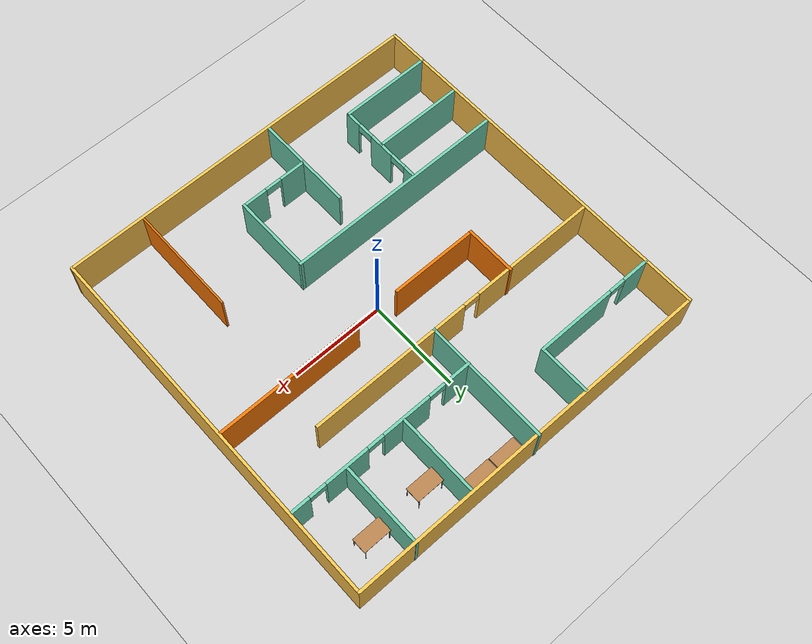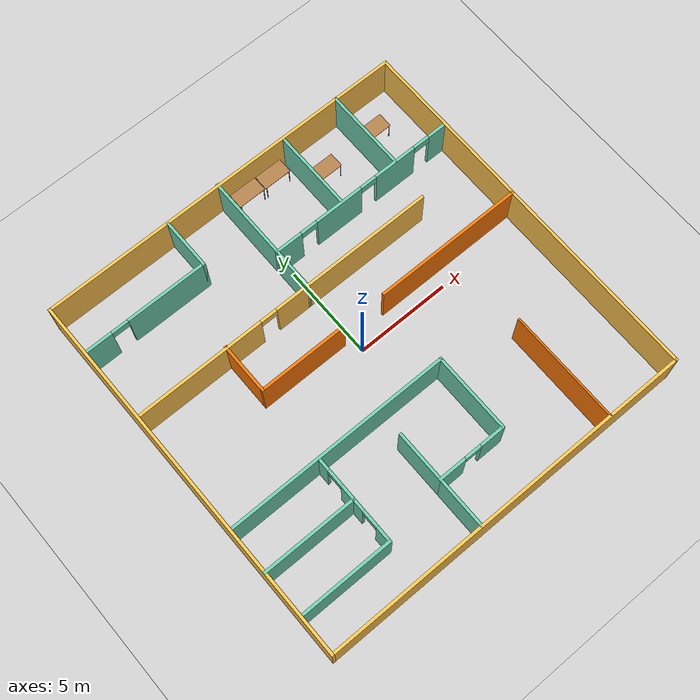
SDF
<sdf version="1.6">
 <world name="default">
  <model name="ground_plane">
   <static>1</static>
   <link name="link">
    <collision name="collision">
     <geometry><plane><normal>0 0 1</normal><size>100 100</size></plane></geometry>
     <surface>
      <contact><collide_bitmask>65535</collide_bitmask></contact>
      <friction><ode><mu>100</mu><mu2>50</mu2></ode></friction>
     </surface>
    </collision>
    <visual name="visual">
     <cast_shadows>0</cast_shadows>
     <geometry><plane><normal>0 0 1</normal><size>100 100</size></plane></geometry>
     <material>
      <script><uri>file://media/materials/scripts/gazebo.material</uri><name>Gazebo/Grey</name></script>
     </material>
    </visual>
   </link>
  </model>
  <model name="small_office">
   <pose>-0.11389 -0.002642 0 0 -0 0</pose>
   <link name="Wall_11">
    <collision name="Wall_11_Collision">
     <geometry><box><size>20 0.15 2.5</size></box></geometry>
     <pose>0 0 1.25 0 -0 0</pose>
    </collision>
    <visual name="Wall_11_Visual">
     <pose>0 0 1.25 0 -0 0</pose>
     <geometry><box><size>20 0.15 2.5</size></box></geometry>
     <material>
      <script><uri>file://media/materials/scripts/gazebo.material</uri><name>Gazebo/Grey</name></script>
      <ambient>1 0.764706 0.305882 1</ambient>
     </material>
     <meta><layer>0</layer></meta>
    </visual>
    <pose>9.925 -0.020313 0 0 -0 -1.5708</pose>
   </link>
   <link name="Wall_13">
    <collision name="Wall_13_Collision">
     <geometry><box><size>6 0.1 2.5</size></box></geometry>
     <pose>0 0 1.25 0 -0 0</pose>
    </collision>
    <visual name="Wall_13_Visual">
     <pose>0 0 1.25 0 -0 0</pose>
     <geometry><box><size>6 0.1 2.5</size></box></geometry>
     <material>
      <script><uri>file://media/materials/scripts/gazebo.material</uri><name>Gazebo/Grey</name></script>
      <ambient>0.996078 0.47451 0.0196078 1</ambient>
     </material>
     <meta><layer>0</layer></meta>
    </visual>
    <pose>5.89991 -6.99585 0 0 -0 -1.5708</pose>
   </link>
   <link name="Wall_15">
    <collision name="Wall_15_Collision">
     <geometry><box><size>4.25 0.15 2.5</size></box></geometry>
     <pose>0 0 1.25 0 -0 0</pose>
    </collision>
    <visual name="Wall_15_Visual">
     <pose>0 0 1.25 0 -0 0</pose>
     <geometry><box><size>4.25 0.15 2.5</size></box></geometry>
     <material>
      <script><uri>file://media/materials/scripts/gazebo.material</uri><name>Gazebo/Grey</name></script>
      <ambient>0.435294 0.796078 0.67451 1</ambient>
     </material>
     <meta><layer>0</layer></meta>
    </visual>
    <pose>1.96698 -5.229 0 0 -0 1.5708</pose>
   </link>
   <link name="Wall_17">
    <pose>0.146869 -7.279 0 0 -0 3.14159</pose>
    <visual name="Wall_17_Visual_0">
     <pose>-1.19969 0 1.25 0 -0 0</pose>
     <geometry><box><size>1.35062 0.15 2.5</size></box></geometry>
     <material>
      <script><uri>file://media/materials/scripts/gazebo.material</uri><name>Gazebo/Grey</name></script>
      <ambient>0.435294 0.796078 0.67451 1</ambient>
     </material>
     <meta><layer>0</layer></meta>
    </visual>
    <collision name="Wall_17_Collision_0">
     <geometry><box><size>1.35062 0.15 2.5</size></box></geometry>
     <pose>-1.19969 0 1.25 0 -0 0</pose>
    </collision>
    <visual name="Wall_17_Visual_1">
     <pose>1.12531 0 1.25 0 -0 0</pose>
     <geometry><box><size>1.49937 0.15 2.5</size></box></geometry>
     <material>
      <script><uri>file://media/materials/scripts/gazebo.material</uri><name>Gazebo/Grey</name></script>
      <ambient>0.435294 0.796078 0.67451 1</ambient>
     </material>
     <meta><layer>0</layer></meta>
    </visual>
    <collision name="Wall_17_Collision_1">
     <geometry><box><size>1.49937 0.15 2.5</size></box></geometry>
     <pose>1.12531 0 1.25 0 -0 0</pose>
    </collision>
    <visual name="Wall_17_Visual_2">
     <pose>-0.074375 0 2.25 0 -0 0</pose>
     <geometry><box><size>0.9 0.15 0.5</size></box></geometry>
     <material>
      <script><uri>file://media/materials/scripts/gazebo.material</uri><name>Gazebo/Grey</name></script>
      <ambient>0.435294 0.796078 0.67451 1</ambient>
     </material>
     <meta><layer>0</layer></meta>
    </visual>
    <collision name="Wall_17_Collision_2">
     <geometry><box><size>0.9 0.15 0.5</size></box></geometry>
     <pose>-0.074375 0 2.25 0 -0 0</pose>
    </collision>
   </link>
   <link name="Wall_25">
    <collision name="Wall_25_Collision">
     <geometry><box><size>2.75 0.15 2.5</size></box></geometry>
     <pose>0 0 1.25 0 -0 0</pose>
    </collision>
    <visual name="Wall_25_Visual">
     <pose>0 0 1.25 0 -0 0</pose>
     <geometry><box><size>2.75 0.15 2.5</size></box></geometry>
     <material>
      <script><uri>file://media/materials/scripts/gazebo.material</uri><name>Gazebo/Grey</name></script>
      <ambient>0.435294 0.796078 0.67451 1</ambient>
     </material>
     <meta><layer>0</layer></meta>
    </visual>
    <pose>-1.65313 -8.579 0 0 -0 -1.5708</pose>
   </link>
   <link name="Wall_28">
    <collision name="Wall_28_Collision">
     <geometry><box><size>2.75 0.15 2.5</size></box></geometry>
     <pose>0 0 1.25 0 -0 0</pose>
    </collision>
    <visual name="Wall_28_Visual">
     <pose>0 0 1.25 0 -0 0</pose>
     <geometry><box><size>2.75 0.15 2.5</size></box></geometry>
     <material>
      <script><uri>file://media/materials/scripts/gazebo.material</uri><name>Gazebo/Grey</name></script>
      <ambient>0.435294 0.796078 0.67451 1</ambient>
     </material>
     <meta><layer>0</layer></meta>
    </visual>
    <pose>-1.65313 -5.979 0 0 -0 -1.5708</pose>
   </link>
   <link name="Wall_32">
    <collision name="Wall_32_Collision">
     <geometry><box><size>5 0.15 2.5</size></box></geometry>
     <pose>0 0 1.25 0 -0 0</pose>
    </collision>
    <visual name="Wall_32_Visual">
     <pose>0 0 1.25 0 -0 0</pose>
     <geometry><box><size>5 0.15 2.5</size></box></geometry>
     <material>
      <script><uri>file://media/materials/scripts/gazebo.material</uri><name>Gazebo/Grey</name></script>
      <ambient>0.435294 0.796078 0.67451 1</ambient>
     </material>
     <meta><layer>0</layer></meta>
    </visual>
    <pose>-7.49031 -7.91366 0 0 -0 3.14159</pose>
   </link>
   <link name="Wall_34">
    <collision name="Wall_34_Collision">
     <geometry><box><size>5 0.15 2.5</size></box></geometry>
     <pose>0 0 1.25 0 -0 0</pose>
    </collision>
    <visual name="Wall_34_Visual">
     <pose>0 0 1.25 0 -0 0</pose>
     <geometry><box><size>5 0.15 2.5</size></box></geometry>
     <material>
      <script><uri>file://media/materials/scripts/gazebo.material</uri><name>Gazebo/Grey</name></script>
      <ambient>0.435294 0.796078 0.67451 1</ambient>
     </material>
     <meta><layer>0</layer></meta>
    </visual>
    <pose>-7.49358 -5.53605 0 0 -0 0</pose>
   </link>
   <link name="Wall_39">
    <collision name="Wall_39_Collision">
     <geometry><box><size>12 0.15 2.5</size></box></geometry>
     <pose>0 0 1.25 0 -0 0</pose>
    </collision>
    <visual name="Wall_39_Visual">
     <pose>0 0 1.25 0 -0 0</pose>
     <geometry><box><size>12 0.15 2.5</size></box></geometry>
     <material>
      <script><uri>file://media/materials/scripts/gazebo.material</uri><name>Gazebo/Grey</name></script>
      <ambient>0.435294 0.796078 0.67451 1</ambient>
     </material>
     <meta><layer>0</layer></meta>
    </visual>
    <pose>-3.95802 -3.179 0 0 -0 3.14159</pose>
   </link>
   <link name="Wall_41">
    <pose>-5.06531 -5.61366 0 0 -0 1.5708</pose>
    <visual name="Wall_41_Visual_0">
     <pose>-1.92932 0 1.25 0 -0 0</pose>
     <geometry><box><size>0.89135 0.15 2.5</size></box></geometry>
     <material>
      <script><uri>file://media/materials/scripts/gazebo.material</uri><name>Gazebo/Grey</name></script>
      <ambient>0.435294 0.796078 0.67451 1</ambient>
     </material>
     <meta><layer>0</layer></meta>
    </visual>
    <collision name="Wall_41_Collision_0">
     <geometry><box><size>0.89135 0.15 2.5</size></box></geometry>
     <pose>-1.92932 0 1.25 0 -0 0</pose>
    </collision>
    <visual name="Wall_41_Visual_1">
     <pose>0.13015 0 1.25 0 -0 0</pose>
     <geometry><box><size>1.4276 0.15 2.5</size></box></geometry>
     <material>
      <script><uri>file://media/materials/scripts/gazebo.material</uri><name>Gazebo/Grey</name></script>
      <ambient>0.435294 0.796078 0.67451 1</ambient>
     </material>
     <meta><layer>0</layer></meta>
    </visual>
    <collision name="Wall_41_Collision_1">
     <geometry><box><size>1.4276 0.15 2.5</size></box></geometry>
     <pose>0.13015 0 1.25 0 -0 0</pose>
    </collision>
    <visual name="Wall_41_Visual_2">
     <pose>2.05947 0 1.25 0 -0 0</pose>
     <geometry><box><size>0.63105 0.15 2.5</size></box></geometry>
     <material>
      <script><uri>file://media/materials/scripts/gazebo.material</uri><name>Gazebo/Grey</name></script>
      <ambient>0.435294 0.796078 0.67451 1</ambient>
     </material>
     <meta><layer>0</layer></meta>
    </visual>
    <collision name="Wall_41_Collision_2">
     <geometry><box><size>0.63105 0.15 2.5</size></box></geometry>
     <pose>2.05947 0 1.25 0 -0 0</pose>
    </collision>
    <visual name="Wall_41_Visual_3">
     <pose>-1.03365 0 2.25 0 -0 0</pose>
     <geometry><box><size>0.9 0.15 0.5</size></box></geometry>
     <material>
      <script><uri>file://media/materials/scripts/gazebo.material</uri><name>Gazebo/Grey</name></script>
      <ambient>0.435294 0.796078 0.67451 1</ambient>
     </material>
     <meta><layer>0</layer></meta>
    </visual>
    <collision name="Wall_41_Collision_3">
     <geometry><box><size>0.9 0.15 0.5</size></box></geometry>
     <pose>-1.03365 0 2.25 0 -0 0</pose>
    </collision>
    <visual name="Wall_41_Visual_4">
     <pose>1.29395 0 2.25 0 -0 0</pose>
     <geometry><box><size>0.9 0.15 0.5</size></box></geometry>
     <material>
      <script><uri>file://media/materials/scripts/gazebo.material</uri><name>Gazebo/Grey</name></script>
      <ambient>0.435294 0.796078 0.67451 1</ambient>
     </material>
     <meta><layer>0</layer></meta>
    </visual>
    <collision name="Wall_41_Collision_4">
     <geometry><box><size>0.9 0.15 0.5</size></box></geometry>
     <pose>1.29395 0 2.25 0 -0 0</pose>
    </collision>
   </link>
   <link name="Wall_43">
    <pose>-6.5641 7.23219 0 0 -0 0</pose>
    <visual name="Wall_43_Visual_0">
     <pose>-2.63259 0 1.25 0 -0 0</pose>
     <geometry><box><size>1.48482 0.15 2.5</size></box></geometry>
     <material>
      <script><uri>file://media/materials/scripts/gazebo.material</uri><name>Gazebo/Grey</name></script>
      <ambient>0.435294 0.796078 0.67451 1</ambient>
     </material>
     <meta><layer>0</layer></meta>
    </visual>
    <collision name="Wall_43_Collision_0">
     <geometry><box><size>1.48482 0.15 2.5</size></box></geometry>
     <pose>-2.63259 0 1.25 0 -0 0</pose>
    </collision>
    <visual name="Wall_43_Visual_1">
     <pose>1.19241 0 1.25 0 -0 0</pose>
     <geometry><box><size>4.36518 0.15 2.5</size></box></geometry>
     <material>
      <script><uri>file://media/materials/scripts/gazebo.material</uri><name>Gazebo/Grey</name></script>
      <ambient>0.435294 0.796078 0.67451 1</ambient>
     </material>
     <meta><layer>0</layer></meta>
    </visual>
    <collision name="Wall_43_Collision_1">
     <geometry><box><size>4.36518 0.15 2.5</size></box></geometry>
     <pose>1.19241 0 1.25 0 -0 0</pose>
    </collision>
    <visual name="Wall_43_Visual_2">
     <pose>-1.44018 0 2.25 0 -0 0</pose>
     <geometry><box><size>0.9 0.15 0.5</size></box></geometry>
     <material>
      <script><uri>file://media/materials/scripts/gazebo.material</uri><name>Gazebo/Grey</name></script>
      <ambient>0.435294 0.796078 0.67451 1</ambient>
     </material>
     <meta><layer>0</layer></meta>
    </visual>
    <collision name="Wall_43_Collision_2">
     <geometry><box><size>0.9 0.15 0.5</size></box></geometry>
     <pose>-1.44018 0 2.25 0 -0 0</pose>
    </collision>
   </link>
   <link name="Wall_44">
    <collision name="Wall_44_Collision">
     <geometry><box><size>2.75 0.15 2.5</size></box></geometry>
     <pose>0 0 1.25 0 -0 0</pose>
    </collision>
    <visual name="Wall_44_Visual">
     <pose>0 0 1.25 0 -0 0</pose>
     <geometry><box><size>2.75 0.15 2.5</size></box></geometry>
     <material>
      <script><uri>file://media/materials/scripts/gazebo.material</uri><name>Gazebo/Grey</name></script>
      <ambient>0.435294 0.796078 0.67451 1</ambient>
     </material>
     <meta><layer>0</layer></meta>
    </visual>
    <pose>-3.2641 8.53219 0 0 -0 1.5708</pose>
   </link>
   <link name="Wall_47">
    <pose>-5.108 3.34531 0 0 -0 0</pose>
    <visual name="Wall_47_Visual_0">
     <pose>-1.40255 0 1.25 0 -0 0</pose>
     <geometry><box><size>6.9449 0.15 2.5</size></box></geometry>
     <material>
      <script><uri>file://media/materials/scripts/gazebo.material</uri><name>Gazebo/Grey</name></script>
      <ambient>1 0.764706 0.305882 1</ambient>
     </material>
     <meta><layer>0</layer></meta>
    </visual>
    <collision name="Wall_47_Collision_0">
     <geometry><box><size>6.9449 0.15 2.5</size></box></geometry>
     <pose>-1.40255 0 1.25 0 -0 0</pose>
    </collision>
    <visual name="Wall_47_Visual_1">
     <pose>3.92245 0 1.25 0 -0 0</pose>
     <geometry><box><size>1.9051 0.15 2.5</size></box></geometry>
     <material>
      <script><uri>file://media/materials/scripts/gazebo.material</uri><name>Gazebo/Grey</name></script>
      <ambient>1 0.764706 0.305882 1</ambient>
     </material>
     <meta><layer>0</layer></meta>
    </visual>
    <collision name="Wall_47_Collision_1">
     <geometry><box><size>1.9051 0.15 2.5</size></box></geometry>
     <pose>3.92245 0 1.25 0 -0 0</pose>
    </collision>
    <visual name="Wall_47_Visual_2">
     <pose>2.5199 0 2.25 0 -0 0</pose>
     <geometry><box><size>0.9 0.15 0.5</size></box></geometry>
     <material>
      <script><uri>file://media/materials/scripts/gazebo.material</uri><name>Gazebo/Grey</name></script>
      <ambient>1 0.764706 0.305882 1</ambient>
     </material>
     <meta><layer>0</layer></meta>
    </visual>
    <collision name="Wall_47_Collision_2">
     <geometry><box><size>0.9 0.15 0.5</size></box></geometry>
     <pose>2.5199 0 2.25 0 -0 0</pose>
    </collision>
   </link>
   <link name="Wall_48">
    <collision name="Wall_48_Collision">
     <geometry><box><size>6.75 0.15 2.5</size></box></geometry>
     <pose>0 0 1.25 0 -0 0</pose>
    </collision>
    <visual name="Wall_48_Visual">
     <pose>0 0 1.25 0 -0 0</pose>
     <geometry><box><size>6.75 0.15 2.5</size></box></geometry>
     <material>
      <script><uri>file://media/materials/scripts/gazebo.material</uri><name>Gazebo/Grey</name></script>
      <ambient>0.435294 0.796078 0.67451 1</ambient>
     </material>
     <meta><layer>0</layer></meta>
    </visual>
    <pose>-0.307996 6.64531 0 0 -0 1.5708</pose>
   </link>
   <link name="Wall_5">
    <collision name="Wall_5_Collision">
     <geometry><box><size>20 0.15 2.5</size></box></geometry>
     <pose>0 0 1.25 0 -0 0</pose>
    </collision>
    <visual name="Wall_5_Visual">
     <pose>0 0 1.25 0 -0 0</pose>
     <geometry><box><size>20 0.15 2.5</size></box></geometry>
     <material>
      <script><uri>file://media/materials/scripts/gazebo.material</uri><name>Gazebo/Grey</name></script>
      <ambient>1 0.764706 0.305882 1</ambient>
     </material>
     <meta><layer>0</layer></meta>
    </visual>
    <pose>-9.925 -0.020313 0 0 -0 -1.5708</pose>
   </link>
   <link name="Wall_51">
    <collision name="Wall_51_Collision">
     <geometry><box><size>4.75 0.15 2.5</size></box></geometry>
     <pose>0 0 1.25 0 -0 0</pose>
    </collision>
    <visual name="Wall_51_Visual">
     <pose>0 0 1.25 0 -0 0</pose>
     <geometry><box><size>4.75 0.15 2.5</size></box></geometry>
     <material>
      <script><uri>file://media/materials/scripts/gazebo.material</uri><name>Gazebo/Grey</name></script>
      <ambient>0.996078 0.47451 0.0196078 1</ambient>
     </material>
     <meta><layer>0</layer></meta>
    </visual>
    <pose>-2.67646 0.791838 0 0 -0 0</pose>
   </link>
   <link name="Wall_53">
    <collision name="Wall_53_Collision">
     <geometry><box><size>8 0.15 2.5</size></box></geometry>
     <pose>0 0 1.25 0 -0 0</pose>
    </collision>
    <visual name="Wall_53_Visual">
     <pose>0 0 1.25 0 -0 0</pose>
     <geometry><box><size>8 0.15 2.5</size></box></geometry>
     <material>
      <script><uri>file://media/materials/scripts/gazebo.material</uri><name>Gazebo/Grey</name></script>
      <ambient>0.996078 0.47451 0.0196078 1</ambient>
     </material>
     <meta><layer>0</layer></meta>
    </visual>
    <pose>5.99489 0.810335 0 0 -0 0</pose>
   </link>
   <link name="Wall_60">
    <collision name="Wall_60_Collision">
     <geometry><box><size>2.75 0.15 2.5</size></box></geometry>
     <pose>0 0 1.25 0 -0 0</pose>
    </collision>
    <visual name="Wall_60_Visual">
     <pose>0 0 1.25 0 -0 0</pose>
     <geometry><box><size>2.75 0.15 2.5</size></box></geometry>
     <material>
      <script><uri>file://media/materials/scripts/gazebo.material</uri><name>Gazebo/Grey</name></script>
      <ambient>0.996078 0.47451 0.0196078 1</ambient>
     </material>
     <meta><layer>0</layer></meta>
    </visual>
    <pose>-4.97646 2.09184 0 0 -0 1.5708</pose>
   </link>
   <link name="Wall_65">
    <pose>4.73757 5.53645 0 0 -0 0</pose>
    <visual name="Wall_65_Visual_0">
     <pose>-4.3785 0 1.25 0 -0 0</pose>
     <geometry><box><size>1.493 0.15 2.5</size></box></geometry>
     <material>
      <script><uri>file://media/materials/scripts/gazebo.material</uri><name>Gazebo/Grey</name></script>
      <ambient>0.435294 0.796078 0.67451 1</ambient>
     </material>
     <meta><layer>0</layer></meta>
    </visual>
    <collision name="Wall_65_Collision_0">
     <geometry><box><size>1.493 0.15 2.5</size></box></geometry>
     <pose>-4.3785 0 1.25 0 -0 0</pose>
    </collision>
    <visual name="Wall_65_Visual_1">
     <pose>-1.38981 0 1.25 0 -0 0</pose>
     <geometry><box><size>2.68438 0.15 2.5</size></box></geometry>
     <material>
      <script><uri>file://media/materials/scripts/gazebo.material</uri><name>Gazebo/Grey</name></script>
      <ambient>0.435294 0.796078 0.67451 1</ambient>
     </material>
     <meta><layer>0</layer></meta>
    </visual>
    <collision name="Wall_65_Collision_1">
     <geometry><box><size>2.68438 0.15 2.5</size></box></geometry>
     <pose>-1.38981 0 1.25 0 -0 0</pose>
    </collision>
    <visual name="Wall_65_Visual_2">
     <pose>2.03308 0 1.25 0 -0 0</pose>
     <geometry><box><size>2.36142 0.15 2.5</size></box></geometry>
     <material>
      <script><uri>file://media/materials/scripts/gazebo.material</uri><name>Gazebo/Grey</name></script>
      <ambient>0.435294 0.796078 0.67451 1</ambient>
     </material>
     <meta><layer>0</layer></meta>
    </visual>
    <collision name="Wall_65_Collision_2">
     <geometry><box><size>2.36142 0.15 2.5</size></box></geometry>
     <pose>2.03308 0 1.25 0 -0 0</pose>
    </collision>
    <visual name="Wall_65_Visual_3">
     <pose>4.61939 0 1.25 0 -0 0</pose>
     <geometry><box><size>1.01121 0.15 2.5</size></box></geometry>
     <material>
      <script><uri>file://media/materials/scripts/gazebo.material</uri><name>Gazebo/Grey</name></script>
      <ambient>0.435294 0.796078 0.67451 1</ambient>
     </material>
     <meta><layer>0</layer></meta>
    </visual>
    <collision name="Wall_65_Collision_3">
     <geometry><box><size>1.01121 0.15 2.5</size></box></geometry>
     <pose>4.61939 0 1.25 0 -0 0</pose>
    </collision>
    <visual name="Wall_65_Visual_4">
     <pose>-3.182 0 2.25 0 -0 0</pose>
     <geometry><box><size>0.9 0.15 0.5</size></box></geometry>
     <material>
      <script><uri>file://media/materials/scripts/gazebo.material</uri><name>Gazebo/Grey</name></script>
      <ambient>0.435294 0.796078 0.67451 1</ambient>
     </material>
     <meta><layer>0</layer></meta>
    </visual>
    <collision name="Wall_65_Collision_4">
     <geometry><box><size>0.9 0.15 0.5</size></box></geometry>
     <pose>-3.182 0 2.25 0 -0 0</pose>
    </collision>
    <visual name="Wall_65_Visual_5">
     <pose>0.402374 0 2.25 0 -0 0</pose>
     <geometry><box><size>0.9 0.15 0.5</size></box></geometry>
     <material>
      <script><uri>file://media/materials/scripts/gazebo.material</uri><name>Gazebo/Grey</name></script>
      <ambient>0.435294 0.796078 0.67451 1</ambient>
     </material>
     <meta><layer>0</layer></meta>
    </visual>
    <collision name="Wall_65_Collision_5">
     <geometry><box><size>0.9 0.15 0.5</size></box></geometry>
     <pose>0.402374 0 2.25 0 -0 0</pose>
    </collision>
    <visual name="Wall_65_Visual_6">
     <pose>3.66379 0 2.25 0 -0 0</pose>
     <geometry><box><size>0.9 0.15 0.5</size></box></geometry>
     <material>
      <script><uri>file://media/materials/scripts/gazebo.material</uri><name>Gazebo/Grey</name></script>
      <ambient>0.435294 0.796078 0.67451 1</ambient>
     </material>
     <meta><layer>0</layer></meta>
    </visual>
    <collision name="Wall_65_Collision_6">
     <geometry><box><size>0.9 0.15 0.5</size></box></geometry>
     <pose>3.66379 0 2.25 0 -0 0</pose>
    </collision>
   </link>
   <link name="Wall_67">
    <collision name="Wall_67_Collision">
     <geometry><box><size>7 0.15 2.5</size></box></geometry>
     <pose>0 0 1.25 0 -0 0</pose>
    </collision>
    <visual name="Wall_67_Visual">
     <pose>0 0 1.25 0 -0 0</pose>
     <geometry><box><size>7 0.15 2.5</size></box></geometry>
     <material>
      <script><uri>file://media/materials/scripts/gazebo.material</uri><name>Gazebo/Grey</name></script>
      <ambient>1 0.764706 0.305882 1</ambient>
     </material>
     <meta><layer>0</layer></meta>
    </visual>
    <pose>3.117 3.34531 0 0 -0 0</pose>
   </link>
   <link name="Wall_69">
    <collision name="Wall_69_Collision">
     <geometry><box><size>4.25 0.15 2.5</size></box></geometry>
     <pose>0 0 1.25 0 -0 0</pose>
    </collision>
    <visual name="Wall_69_Visual">
     <pose>0 0 1.25 0 -0 0</pose>
     <geometry><box><size>4.25 0.15 2.5</size></box></geometry>
     <material>
      <script><uri>file://media/materials/scripts/gazebo.material</uri><name>Gazebo/Grey</name></script>
      <ambient>0.435294 0.796078 0.67451 1</ambient>
     </material>
     <meta><layer>0</layer></meta>
    </visual>
    <pose>3.55687 7.70224 0 0 -0 1.5708</pose>
   </link>
   <link name="Wall_7">
    <collision name="Wall_7_Collision">
     <geometry><box><size>20 0.15 2.5</size></box></geometry>
     <pose>0 0 1.25 0 -0 0</pose>
    </collision>
    <visual name="Wall_7_Visual">
     <pose>0 0 1.25 0 -0 0</pose>
     <geometry><box><size>20 0.15 2.5</size></box></geometry>
     <material>
      <script><uri>file://media/materials/scripts/gazebo.material</uri><name>Gazebo/Grey</name></script>
      <ambient>1 0.764706 0.305882 1</ambient>
     </material>
     <meta><layer>0</layer></meta>
    </visual>
    <pose>-0 -9.94531 0 0 -0 0</pose>
   </link>
   <link name="Wall_73">
    <collision name="Wall_73_Collision">
     <geometry><box><size>4.5 0.15 2.5</size></box></geometry>
     <pose>0 0 1.25 0 -0 0</pose>
    </collision>
    <visual name="Wall_73_Visual">
     <pose>0 0 1.25 0 -0 0</pose>
     <geometry><box><size>4.5 0.15 2.5</size></box></geometry>
     <material>
      <script><uri>file://media/materials/scripts/gazebo.material</uri><name>Gazebo/Grey</name></script>
      <ambient>0.435294 0.796078 0.67451 1</ambient>
     </material>
     <meta><layer>0</layer></meta>
    </visual>
    <pose>6.81213 7.74342 0 0 -0 1.5708</pose>
   </link>
   <link name="Wall_9">
    <collision name="Wall_9_Collision">
     <geometry><box><size>20 0.15 2.5</size></box></geometry>
     <pose>0 0 1.25 0 -0 0</pose>
    </collision>
    <visual name="Wall_9_Visual">
     <pose>0 0 1.25 0 -0 0</pose>
     <geometry><box><size>20 0.15 2.5</size></box></geometry>
     <material>
      <script><uri>file://media/materials/scripts/gazebo.material</uri><name>Gazebo/Grey</name></script>
      <ambient>1 0.764706 0.305882 1</ambient>
     </material>
     <meta><layer>0</layer></meta>
    </visual>
    <pose>-0 9.90469 0 0 -0 0</pose>
   </link>
   <static>1</static>
  </model>
  <model name="table_2">
   <static>1</static>
   <link name="link">
    <collision name="surface">
     <pose>0 0 1 0 -0 0</pose>
     <geometry><box><size>1.5 0.8 0.03</size></box></geometry>
     <surface><friction><ode><mu>0.6</mu><mu2>0.6</mu2></ode></friction></surface>
    </collision>
    <visual name="visual1">
     <pose>0 0 1 0 -0 0</pose>
     <geometry><box><size>1.5 0.8 0.03</size></box></geometry>
     <material>
      <script><uri>file://media/materials/scripts/gazebo.material</uri><name>Gazebo/Wood</name></script>
     </material>
    </visual>
    <collision name="front_left_leg">
     <pose>0.68 0.38 0.5 0 -0 0</pose>
     <geometry><cylinder><radius>0.02</radius><length>1</length></cylinder></geometry>
    </collision>
    <visual name="front_left_leg">
     <pose>0.68 0.38 0.5 0 -0 0</pose>
     <geometry><cylinder><radius>0.02</radius><length>1</length></cylinder></geometry>
     <material>
      <script><uri>file://media/materials/scripts/gazebo.material</uri><name>Gazebo/Grey</name></script>
     </material>
    </visual>
    <collision name="front_right_leg">
     <pose>0.68 -0.38 0.5 0 -0 0</pose>
     <geometry><cylinder><radius>0.02</radius><length>1</length></cylinder></geometry>
    </collision>
    <visual name="front_right_leg">
     <pose>0.68 -0.38 0.5 0 -0 0</pose>
     <geometry><cylinder><radius>0.02</radius><length>1</length></cylinder></geometry>
     <material>
      <script><uri>file://media/materials/scripts/gazebo.material</uri><name>Gazebo/Grey</name></script>
     </material>
    </visual>
    <collision name="back_right_leg">
     <pose>-0.68 -0.38 0.5 0 -0 0</pose>
     <geometry><cylinder><radius>0.02</radius><length>1</length></cylinder></geometry>
    </collision>
    <visual name="back_right_leg">
     <pose>-0.68 -0.38 0.5 0 -0 0</pose>
     <geometry><cylinder><radius>0.02</radius><length>1</length></cylinder></geometry>
     <material>
      <script><uri>file://media/materials/scripts/gazebo.material</uri><name>Gazebo/Grey</name></script>
     </material>
    </visual>
    <collision name="back_left_leg">
     <pose>-0.68 0.38 0.5 0 -0 0</pose>
     <geometry><cylinder><radius>0.02</radius><length>1</length></cylinder></geometry>
    </collision>
    <visual name="back_left_leg">
     <pose>-0.68 0.38 0.5 0 -0 0</pose>
     <geometry><cylinder><radius>0.02</radius><length>1</length></cylinder></geometry>
     <material>
      <script><uri>file://media/materials/scripts/gazebo.material</uri><name>Gazebo/Grey</name></script>
     </material>
    </visual>
   </link>
   <pose>7.58088 8.14397 0 0 -0 0</pose>
  </model>
  <model name="table_3">
   <static>1</static>
   <link name="link">
    <collision name="surface">
     <pose>0 0 1 0 -0 0</pose>
     <geometry><box><size>1.5 0.8 0.03</size></box></geometry>
     <surface><friction><ode><mu>0.6</mu><mu2>0.6</mu2></ode></friction></surface>
    </collision>
    <visual name="visual1">
     <pose>0 0 1 0 -0 0</pose>
     <geometry><box><size>1.5 0.8 0.03</size></box></geometry>
     <material>
      <script><uri>file://media/materials/scripts/gazebo.material</uri><name>Gazebo/Wood</name></script>
     </material>
    </visual>
    <collision name="front_left_leg">
     <pose>0.68 0.38 0.5 0 -0 0</pose>
     <geometry><cylinder><radius>0.02</radius><length>1</length></cylinder></geometry>
    </collision>
    <visual name="front_left_leg">
     <pose>0.68 0.38 0.5 0 -0 0</pose>
     <geometry><cylinder><radius>0.02</radius><length>1</length></cylinder></geometry>
     <material>
      <script><uri>file://media/materials/scripts/gazebo.material</uri><name>Gazebo/Grey</name></script>
     </material>
    </visual>
    <collision name="front_right_leg">
     <pose>0.68 -0.38 0.5 0 -0 0</pose>
     <geometry><cylinder><radius>0.02</radius><length>1</length></cylinder></geometry>
    </collision>
    <visual name="front_right_leg">
     <pose>0.68 -0.38 0.5 0 -0 0</pose>
     <geometry><cylinder><radius>0.02</radius><length>1</length></cylinder></geometry>
     <material>
      <script><uri>file://media/materials/scripts/gazebo.material</uri><name>Gazebo/Grey</name></script>
     </material>
    </visual>
    <collision name="back_right_leg">
     <pose>-0.68 -0.38 0.5 0 -0 0</pose>
     <geometry><cylinder><radius>0.02</radius><length>1</length></cylinder></geometry>
    </collision>
    <visual name="back_right_leg">
     <pose>-0.68 -0.38 0.5 0 -0 0</pose>
     <geometry><cylinder><radius>0.02</radius><length>1</length></cylinder></geometry>
     <material>
      <script><uri>file://media/materials/scripts/gazebo.material</uri><name>Gazebo/Grey</name></script>
     </material>
    </visual>
    <collision name="back_left_leg">
     <pose>-0.68 0.38 0.5 0 -0 0</pose>
     <geometry><cylinder><radius>0.02</radius><length>1</length></cylinder></geometry>
    </collision>
    <visual name="back_left_leg">
     <pose>-0.68 0.38 0.5 0 -0 0</pose>
     <geometry><cylinder><radius>0.02</radius><length>1</length></cylinder></geometry>
     <material>
      <script><uri>file://media/materials/scripts/gazebo.material</uri><name>Gazebo/Grey</name></script>
     </material>
    </visual>
   </link>
   <pose>4.38209 8.01034 0 0 -0 0</pose>
  </model>
  <model name="table_4">
   <static>1</static>
   <link name="link">
    <collision name="surface">
     <pose>0 0 1 0 -0 0</pose>
     <geometry><box><size>1.5 0.8 0.03</size></box></geometry>
     <surface><friction><ode><mu>0.6</mu><mu2>0.6</mu2></ode></friction></surface>
    </collision>
    <visual name="visual1">
     <pose>0 0 1 0 -0 0</pose>
     <geometry><box><size>1.5 0.8 0.03</size></box></geometry>
     <material>
      <script><uri>file://media/materials/scripts/gazebo.material</uri><name>Gazebo/Wood</name></script>
     </material>
    </visual>
    <collision name="front_left_leg">
     <pose>0.68 0.38 0.5 0 -0 0</pose>
     <geometry><cylinder><radius>0.02</radius><length>1</length></cylinder></geometry>
    </collision>
    <visual name="front_left_leg">
     <pose>0.68 0.38 0.5 0 -0 0</pose>
     <geometry><cylinder><radius>0.02</radius><length>1</length></cylinder></geometry>
     <material>
      <script><uri>file://media/materials/scripts/gazebo.material</uri><name>Gazebo/Grey</name></script>
     </material>
    </visual>
    <collision name="front_right_leg">
     <pose>0.68 -0.38 0.5 0 -0 0</pose>
     <geometry><cylinder><radius>0.02</radius><length>1</length></cylinder></geometry>
    </collision>
    <visual name="front_right_leg">
     <pose>0.68 -0.38 0.5 0 -0 0</pose>
     <geometry><cylinder><radius>0.02</radius><length>1</length></cylinder></geometry>
     <material>
      <script><uri>file://media/materials/scripts/gazebo.material</uri><name>Gazebo/Grey</name></script>
     </material>
    </visual>
    <collision name="back_right_leg">
     <pose>-0.68 -0.38 0.5 0 -0 0</pose>
     <geometry><cylinder><radius>0.02</radius><length>1</length></cylinder></geometry>
    </collision>
    <visual name="back_right_leg">
     <pose>-0.68 -0.38 0.5 0 -0 0</pose>
     <geometry><cylinder><radius>0.02</radius><length>1</length></cylinder></geometry>
     <material>
      <script><uri>file://media/materials/scripts/gazebo.material</uri><name>Gazebo/Grey</name></script>
     </material>
    </visual>
    <collision name="back_left_leg">
     <pose>-0.68 0.38 0.5 0 -0 0</pose>
     <geometry><cylinder><radius>0.02</radius><length>1</length></cylinder></geometry>
    </collision>
    <visual name="back_left_leg">
     <pose>-0.68 0.38 0.5 0 -0 0</pose>
     <geometry><cylinder><radius>0.02</radius><length>1</length></cylinder></geometry>
     <material>
      <script><uri>file://media/materials/scripts/gazebo.material</uri><name>Gazebo/Grey</name></script>
     </material>
    </visual>
   </link>
   <pose>0.759189 9.39238 0 0 -0 0</pose>
  </model>
  <model name="table_5">
   <static>1</static>
   <link name="link">
    <collision name="surface">
     <pose>0 0 1 0 -0 0</pose>
     <geometry><box><size>1.5 0.8 0.03</size></box></geometry>
     <surface><friction><ode><mu>0.6</mu><mu2>0.6</mu2></ode></friction></surface>
    </collision>
    <visual name="visual1">
     <pose>0 0 1 0 -0 0</pose>
     <geometry><box><size>1.5 0.8 0.03</size></box></geometry>
     <material>
      <script><uri>file://media/materials/scripts/gazebo.material</uri><name>Gazebo/Wood</name></script>
     </material>
    </visual>
    <collision name="front_left_leg">
     <pose>0.68 0.38 0.5 0 -0 0</pose>
     <geometry><cylinder><radius>0.02</radius><length>1</length></cylinder></geometry>
    </collision>
    <visual name="front_left_leg">
     <pose>0.68 0.38 0.5 0 -0 0</pose>
     <geometry><cylinder><radius>0.02</radius><length>1</length></cylinder></geometry>
     <material>
      <script><uri>file://media/materials/scripts/gazebo.material</uri><name>Gazebo/Grey</name></script>
     </material>
    </visual>
    <collision name="front_right_leg">
     <pose>0.68 -0.38 0.5 0 -0 0</pose>
     <geometry><cylinder><radius>0.02</radius><length>1</length></cylinder></geometry>
    </collision>
    <visual name="front_right_leg">
     <pose>0.68 -0.38 0.5 0 -0 0</pose>
     <geometry><cylinder><radius>0.02</radius><length>1</length></cylinder></geometry>
     <material>
      <script><uri>file://media/materials/scripts/gazebo.material</uri><name>Gazebo/Grey</name></script>
     </material>
    </visual>
    <collision name="back_right_leg">
     <pose>-0.68 -0.38 0.5 0 -0 0</pose>
     <geometry><cylinder><radius>0.02</radius><length>1</length></cylinder></geometry>
    </collision>
    <visual name="back_right_leg">
     <pose>-0.68 -0.38 0.5 0 -0 0</pose>
     <geometry><cylinder><radius>0.02</radius><length>1</length></cylinder></geometry>
     <material>
      <script><uri>file://media/materials/scripts/gazebo.material</uri><name>Gazebo/Grey</name></script>
     </material>
    </visual>
    <collision name="back_left_leg">
     <pose>-0.68 0.38 0.5 0 -0 0</pose>
     <geometry><cylinder><radius>0.02</radius><length>1</length></cylinder></geometry>
    </collision>
    <visual name="back_left_leg">
     <pose>-0.68 0.38 0.5 0 -0 0</pose>
     <geometry><cylinder><radius>0.02</radius><length>1</length></cylinder></geometry>
     <material>
      <script><uri>file://media/materials/scripts/gazebo.material</uri><name>Gazebo/Grey</name></script>
     </material>
    </visual>
   </link>
   <pose>2.29333 9.37201 0 0 -0 0</pose>
  </model>
 </world>
</sdf>
